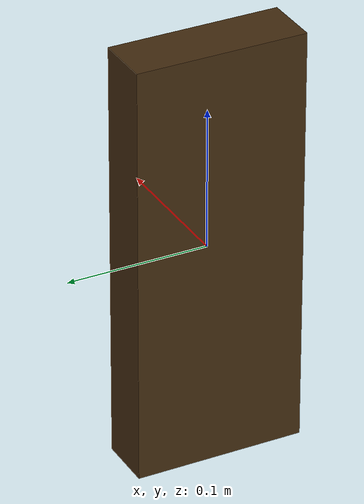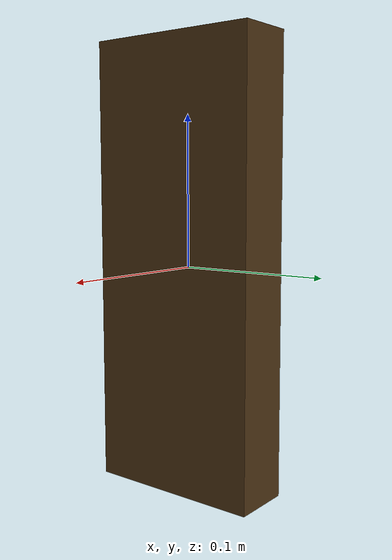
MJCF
<mujoco model="tallbox">
    <option noslip_iterations="3"/>

    <asset>
	<texture name="texgeom" type="cube" builtin="flat" mark="cross" width="128" height="128"
		 rgb1="0.6 0.6 0.6" rgb2="0.6 0.6 0.6" markrgb="1 1 1"/>
	<material name='object' texture="texgeom" texuniform="true" rgba=".4 .9 .6 1" />
    </asset>

    <default>
        <default class="shape">
	    <geom type="box" size="0.02 0.06 0.15" />
	    <default class="collision">
		<geom condim="3" group="0" rgba="0.266754 0.174546 0.0644028 1" />
	    </default>
	    <default class="visual">
		<geom condim="3" group="1" material="object" conaffinity="0" contype="0" />
	    </default>
	</default>
    </default>

    <worldbody>
      <light mode="targetbodycom" target="base_link" directional="false" diffuse=".8 .8 .8" specular="0.3 0.3 0.3" pos="0 0 4.0" dir="0 0 -1" />
      <body name="base_link">
        <joint name="root" type="free" />
        <inertial pos="0 0 0" mass="3" diaginertia="0.050112 0.046272 0.009984"/>
        <geom class="collision" />
        <geom class="visual" />
      </body>
    </worldbody>
</mujoco>
